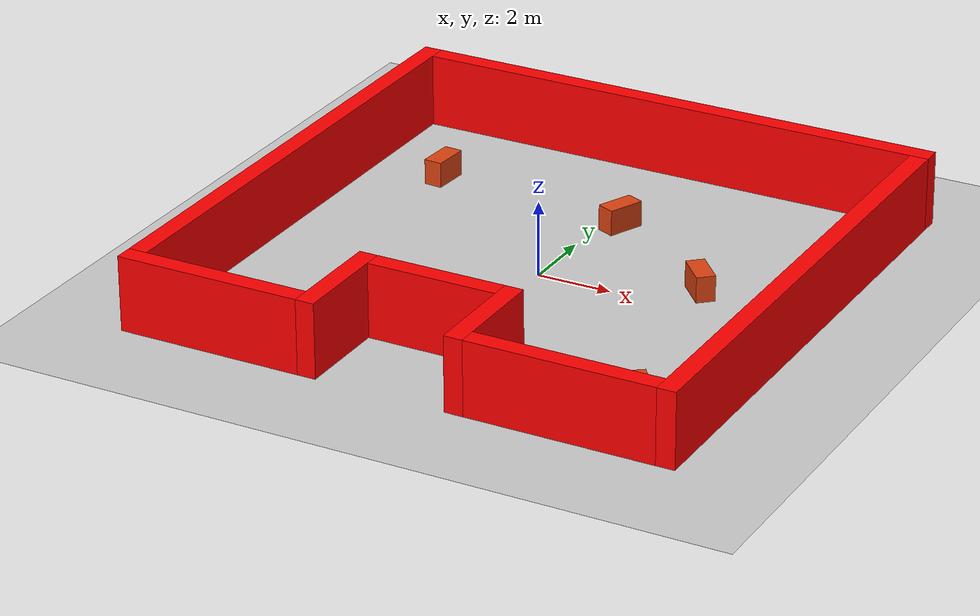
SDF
<sdf version="1.7">
 <world name="my_world">
  <physics name="1ms" type="ignored">
   <max_step_size>0.001</max_step_size>
   <real_time_factor>1.0</real_time_factor>
  </physics>
  <plugin filename="gz-sim-physics-system" name="gz::sim::systems::Physics"/>
  <plugin filename="gz-sim-user-commands-system" name="gz::sim::systems::UserCommands"/>
  <plugin filename="gz-sim-scene-broadcaster-system" name="gz::sim::systems::SceneBroadcaster"/>
  <plugin filename="gz-sim-imu-system" name="gz::sim::systems::Imu"/>
  <plugin filename="gz-sim-sensors-system" name="gz::sim::systems::Sensors">
   <render_engine>ogre2</render_engine>
  </plugin>
  <light type="directional" name="sun">
   <pose>0 0 10 0 0 0</pose>
   <diffuse>0.8 0.8 0.8 1</diffuse>
   <specular>0.2 0.2 0.2 1</specular>
   <attenuation>
    <range>1000</range>
    <constant>0.9</constant>
    <linear>0.01</linear>
    <quadratic>0.001</quadratic>
   </attenuation>
   <direction>-0.5 0.1 -0.9</direction>
  </light>
  <model name="ground_plane">
   <static>true</static>
   <link name="link">
    <collision name="collision"><geometry><plane><normal>0 0 1</normal></plane></geometry></collision>
    <visual name="visual">
     <geometry><plane><normal>0 0 1</normal><size>15 15</size></plane></geometry>
     <material>
      <ambient>0.8 0.8 0.8 1</ambient>
      <diffuse>0.8 0.8 0.8 1</diffuse>
      <specular>0.8 0.8 0.8 1</specular>
     </material>
    </visual>
   </link>
  </model>
  <model name="wall_1">
   <static>true</static>
   <pose>7.25 -0.25 1 0 0 0</pose>
   <link name="box">
    <visual name="visual">
     <geometry><box><size>0.5 14.5 2.0</size></box></geometry>
     <material><ambient>1 0 0 1</ambient><diffuse>1 0 0 1</diffuse><specular>1 0 0 1</specular></material>
    </visual>
    <collision name="collision"><geometry><box><size>0.5 14.5 2.0</size></box></geometry></collision>
   </link>
  </model>
  <model name="wall_2">
   <static>true</static>
   <pose>-7.25 0.25 1 0 0 0</pose>
   <link name="box">
    <visual name="visual">
     <geometry><box><size>0.5 14.5 2.0</size></box></geometry>
     <material><ambient>1 0 0 1</ambient><diffuse>1 0 0 1</diffuse><specular>1 0 0 1</specular></material>
    </visual>
    <collision name="collision"><geometry><box><size>0.5 14.5 2.0</size></box></geometry></collision>
   </link>
  </model>
  <model name="wall_3">
   <static>true</static>
   <pose>0.25 7.25 1 0 0 0</pose>
   <link name="box">
    <visual name="visual">
     <geometry><box><size>14.5 0.5 2.0</size></box></geometry>
     <material><ambient>1 0 0 1</ambient><diffuse>1 0 0 1</diffuse><specular>1 0 0 1</specular></material>
    </visual>
    <collision name="collision"><geometry><box><size>14.5 0.5 2.0</size></box></geometry></collision>
   </link>
  </model>
  <model name="wall_4_a">
   <static>true</static>
   <pose>4.5 -7.25 1 0 0 0</pose>
   <link name="box">
    <visual name="visual">
     <geometry><box><size>5 0.5 2.0</size></box></geometry>
     <material><ambient>1 0 0 1</ambient><diffuse>1 0 0 1</diffuse><specular>1 0 0 1</specular></material>
    </visual>
    <collision name="collision"><geometry><box><size>5 0.5 2.0</size></box></geometry></collision>
   </link>
  </model>
  <model name="wall_4_b">
   <static>true</static>
   <pose>-5 -7.25 1 0 0 0</pose>
   <link name="box">
    <visual name="visual">
     <geometry><box><size>5 0.5 2.0</size></box></geometry>
     <material><ambient>1 0 0 1</ambient><diffuse>1 0 0 1</diffuse><specular>1 0 0 1</specular></material>
    </visual>
    <collision name="collision"><geometry><box><size>5 0.5 2.0</size></box></geometry></collision>
   </link>
  </model>
  <model name="wall_4_c">
   <static>true</static>
   <pose>1.75 -6 1 0 0 0</pose>
   <link name="box">
    <visual name="visual">
     <geometry><box><size>0.5 3 2.0</size></box></geometry>
     <material><ambient>1 0 0 1</ambient><diffuse>1 0 0 1</diffuse><specular>1 0 0 1</specular></material>
    </visual>
    <collision name="collision"><geometry><box><size>0.5 3 2.0</size></box></geometry></collision>
   </link>
  </model>
  <model name="wall_4_d">
   <static>true</static>
   <pose>-2.25 -6 1 0 0 0</pose>
   <link name="box">
    <visual name="visual">
     <geometry><box><size>0.5 3 2.0</size></box></geometry>
     <material><ambient>1 0 0 1</ambient><diffuse>1 0 0 1</diffuse><specular>1 0 0 1</specular></material>
    </visual>
    <collision name="collision"><geometry><box><size>0.5 3 2.0</size></box></geometry></collision>
   </link>
  </model>
  <model name="wall_4_e">
   <static>true</static>
   <pose>-0.25 -4.75 1 0 0 0</pose>
   <link name="box">
    <visual name="visual">
     <geometry><box><size>3.5 0.5 2.0</size></box></geometry>
     <material><ambient>1 0 0 1</ambient><diffuse>1 0 0 1</diffuse><specular>1 0 0 1</specular></material>
    </visual>
    <collision name="collision"><geometry><box><size>3.5 0.5 2.0</size></box></geometry></collision>
   </link>
  </model>
  <model name="obstacle_1">
   <static>true</static>
   <pose>-5 4 0.3 0 0 1.5</pose>
   <link name="box">
    <visual name="visual">
     <geometry><box><size>1 0.5 0.75</size></box></geometry>
     <material>
      <ambient>0.87 0.26 0.07 1</ambient>
      <diffuse>0.87 0.26 0.07 1</diffuse>
      <specular>0.87 0.26 0.07 1</specular>
     </material>
    </visual>
    <collision name="collision"><geometry><box><size>1 0.5 0.75</size></box></geometry></collision>
   </link>
  </model>
  <model name="obstacle_2">
   <static>true</static>
   <pose>4 1 0.3 0 0 2.3</pose>
   <link name="box">
    <visual name="visual">
     <geometry><box><size>1 0.5 0.75</size></box></geometry>
     <material>
      <ambient>0.87 0.26 0.07 1</ambient>
      <diffuse>0.87 0.26 0.07 1</diffuse>
      <specular>0.87 0.26 0.07 1</specular>
     </material>
    </visual>
    <collision name="collision"><geometry><box><size>1 0.5 0.75</size></box></geometry></collision>
   </link>
  </model>
  <model name="obstacle_3">
   <static>true</static>
   <pose>5 -5 0.3 0 0 3.8</pose>
   <link name="box">
    <visual name="visual">
     <geometry><box><size>1 0.5 0.75</size></box></geometry>
     <material>
      <ambient>0.87 0.26 0.07 1</ambient>
      <diffuse>0.87 0.26 0.07 1</diffuse>
      <specular>0.87 0.26 0.07 1</specular>
     </material>
    </visual>
    <collision name="collision"><geometry><box><size>1 0.5 0.75</size></box></geometry></collision>
   </link>
  </model>
  <model name="obstacle_4">
   <static>true</static>
   <pose>-2 -3 0.3 0 0 1.1</pose>
   <link name="box">
    <visual name="visual">
     <geometry><box><size>1 0.5 0.75</size></box></geometry>
     <material>
      <ambient>0.87 0.26 0.07 1</ambient>
      <diffuse>0.87 0.26 0.07 1</diffuse>
      <specular>0.87 0.26 0.07 1</specular>
     </material>
    </visual>
    <collision name="collision"><geometry><box><size>1 0.5 0.75</size></box></geometry></collision>
   </link>
  </model>
  <model name="obstacle_5">
   <static>true</static>
   <pose>0.5 3.5 0.3 0 0 4.3</pose>
   <link name="box">
    <visual name="visual">
     <geometry><box><size>1 0.5 0.75</size></box></geometry>
     <material>
      <ambient>0.87 0.26 0.07 1</ambient>
      <diffuse>0.87 0.26 0.07 1</diffuse>
      <specular>0.87 0.26 0.07 1</specular>
     </material>
    </visual>
    <collision name="collision"><geometry><box><size>1 0.5 0.75</size></box></geometry></collision>
   </link>
  </model>
 </world>
</sdf>
